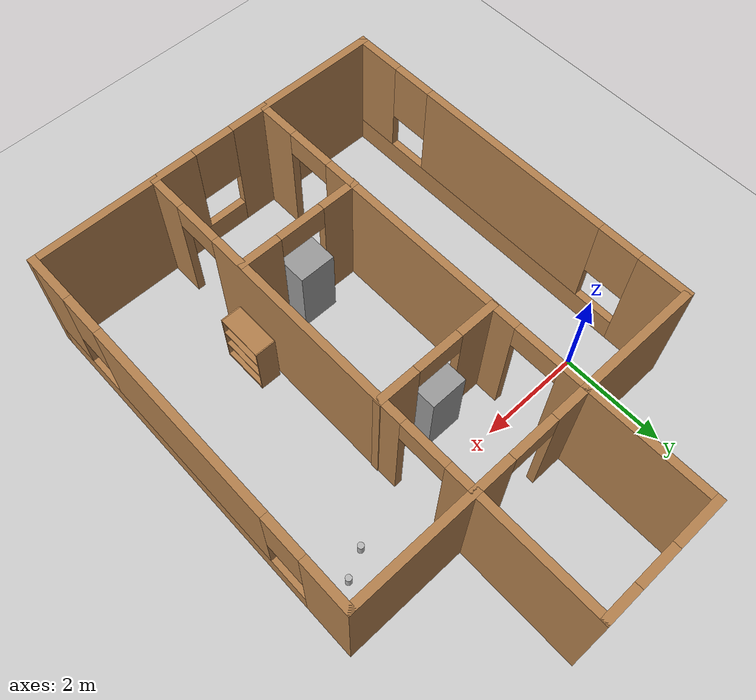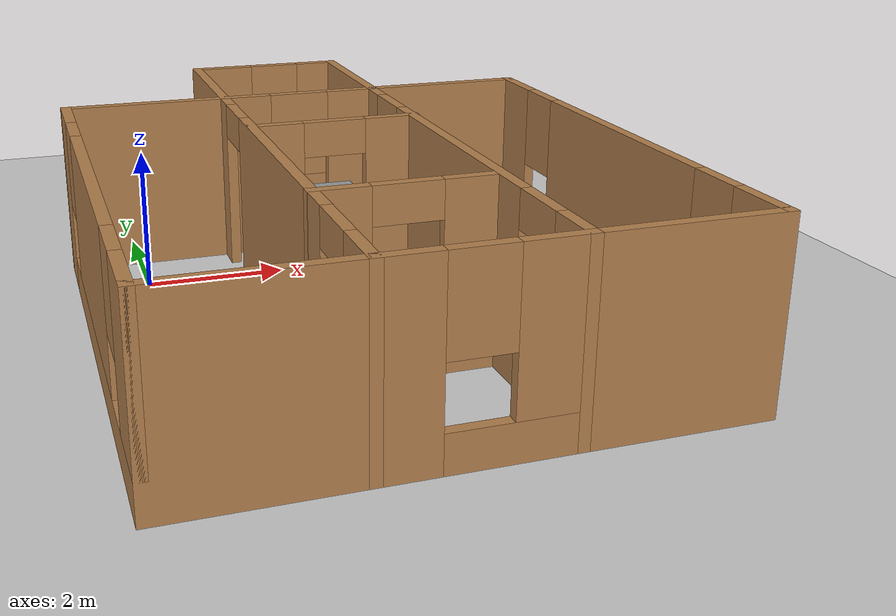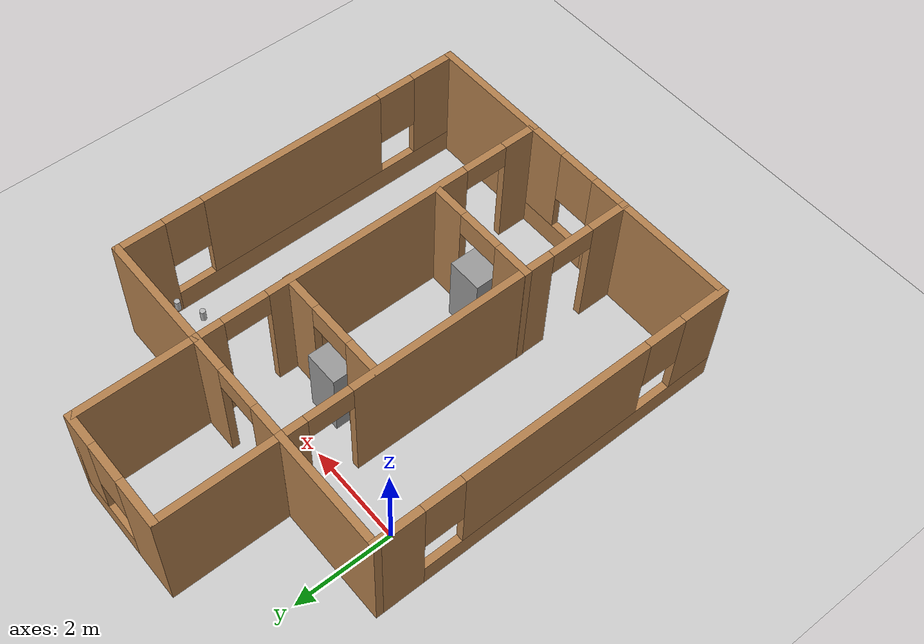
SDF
<sdf version="1.6">
 <world name="default">
  <light name="sun" type="directional">
   <pose>0 0 10 0 -0 0</pose>
   <diffuse>0.8 0.8 0.8 1</diffuse>
   <specular>0.2 0.2 0.2 1</specular>
   <attenuation>
    <range>1000</range>
    <constant>0.9</constant>
    <linear>0.01</linear>
    <quadratic>0.001</quadratic>
   </attenuation>
   <direction>-0.5 0.1 -0.9</direction>
  </light>
  <model name="ground_plane">
   <static>1</static>
   <link name="link">
    <collision name="collision">
     <geometry><plane><normal>0 0 1</normal><size>100 100</size></plane></geometry>
     <surface><friction><ode><mu>100</mu><mu2>50</mu2></ode></friction></surface>
    </collision>
    <visual name="visual">
     <cast_shadows>0</cast_shadows>
     <geometry><plane><normal>0 0 1</normal><size>100 100</size></plane></geometry>
     <material>
      <script><uri>file://media/materials/scripts/gazebo.material</uri><name>Gazebo/Grey</name></script>
     </material>
    </visual>
   </link>
  </model>
  <gravity>0 0 -9.8</gravity>
  <magnetic_field>6e-06 2.3e-05 -4.2e-05</magnetic_field>
  <atmosphere type="adiabatic"/>
  <physics name="default_physics" default="0" type="ode">
   <max_step_size>0.001</max_step_size>
   <real_time_factor>1</real_time_factor>
   <real_time_update_rate>1000</real_time_update_rate>
  </physics>
  <scene><ambient>0.4 0.4 0.4 1</ambient><background>0.7 0.7 0.7 1</background><shadows>1</shadows></scene>
  <spherical_coordinates>
   <surface_model>EARTH_WGS84</surface_model>
   <latitude_deg>0</latitude_deg>
   <longitude_deg>0</longitude_deg>
   <elevation>0</elevation>
   <heading_deg>0</heading_deg>
  </spherical_coordinates>
  <model name="the_whippu_dungeon">
   <pose>2.59607 -1.47689 0 0 -0 0</pose>
   <link name="Wall_63">
    <pose>0 4.85 0 0 -0 0</pose>
    <visual name="Wall_63_Visual_0">
     <pose>-0.754807 0 1.25 0 -0 0</pose>
     <geometry><box><size>0.990386 0.15 2.5</size></box></geometry>
     <material>
      <script><uri>file://media/materials/scripts/gazebo.material</uri><name>Gazebo/Wood</name></script>
      <ambient>1 1 1 1</ambient>
     </material>
     <meta><layer>0</layer></meta>
    </visual>
    <collision name="Wall_63_Collision_0">
     <geometry><box><size>0.990386 0.15 2.5</size></box></geometry>
     <pose>-0.754807 0 1.25 0 -0 0</pose>
    </collision>
    <visual name="Wall_63_Visual_1">
     <pose>0.495193 0 0.25 0 -0 0</pose>
     <geometry><box><size>1.50961 0.15 0.5</size></box></geometry>
     <material>
      <script><uri>file://media/materials/scripts/gazebo.material</uri><name>Gazebo/Wood</name></script>
      <ambient>1 1 1 1</ambient>
     </material>
     <meta><layer>0</layer></meta>
    </visual>
    <collision name="Wall_63_Collision_1">
     <geometry><box><size>1.50961 0.15 0.5</size></box></geometry>
     <pose>0.495193 0 0.25 0 -0 0</pose>
    </collision>
    <visual name="Wall_63_Visual_2">
     <pose>0.895193 0 1.5 0 -0 0</pose>
     <geometry><box><size>0.709614 0.15 2</size></box></geometry>
     <material>
      <script><uri>file://media/materials/scripts/gazebo.material</uri><name>Gazebo/Wood</name></script>
      <ambient>1 1 1 1</ambient>
     </material>
     <meta><layer>0</layer></meta>
    </visual>
    <collision name="Wall_63_Collision_2">
     <geometry><box><size>0.709614 0.15 2</size></box></geometry>
     <pose>0.895193 0 1.5 0 -0 0</pose>
    </collision>
    <visual name="Wall_63_Visual_3">
     <pose>0.140386 0 1.9 0 -0 0</pose>
     <geometry><box><size>0.8 0.15 1.2</size></box></geometry>
     <material>
      <script><uri>file://media/materials/scripts/gazebo.material</uri><name>Gazebo/Wood</name></script>
      <ambient>1 1 1 1</ambient>
     </material>
     <meta><layer>0</layer></meta>
    </visual>
    <collision name="Wall_63_Collision_3">
     <geometry><box><size>0.8 0.15 1.2</size></box></geometry>
     <pose>0.140386 0 1.9 0 -0 0</pose>
    </collision>
   </link>
   <link name="Wall_64">
    <collision name="Wall_64_Collision">
     <geometry><box><size>2.5 0.15 2.5</size></box></geometry>
     <pose>0 0 1.25 0 -0 0</pose>
    </collision>
    <visual name="Wall_64_Visual">
     <pose>0 0 1.25 0 -0 0</pose>
     <geometry><box><size>2.5 0.15 2.5</size></box></geometry>
     <material>
      <script><uri>file://media/materials/scripts/gazebo.material</uri><name>Gazebo/Wood</name></script>
      <ambient>1 1 1 1</ambient>
     </material>
     <meta><layer>0</layer></meta>
    </visual>
    <pose>1.175 3.675 0 0 0 -1.5708</pose>
   </link>
   <link name="Wall_65">
    <pose>0 2.5 0 0 -0 3.14159</pose>
    <visual name="Wall_65_Visual_0">
     <pose>-0.839693 0 1.25 0 -0 0</pose>
     <geometry><box><size>0.820614 0.15 2.5</size></box></geometry>
     <material>
      <script><uri>file://media/materials/scripts/gazebo.material</uri><name>Gazebo/Wood</name></script>
      <ambient>1 1 1 1</ambient>
     </material>
     <meta><layer>0</layer></meta>
    </visual>
    <collision name="Wall_65_Collision_0">
     <geometry><box><size>0.820614 0.15 2.5</size></box></geometry>
     <pose>-0.839693 0 1.25 0 -0 0</pose>
    </collision>
    <visual name="Wall_65_Visual_1">
     <pose>0.860307 0 1.25 0 -0 0</pose>
     <geometry><box><size>0.779386 0.15 2.5</size></box></geometry>
     <material>
      <script><uri>file://media/materials/scripts/gazebo.material</uri><name>Gazebo/Wood</name></script>
      <ambient>1 1 1 1</ambient>
     </material>
     <meta><layer>0</layer></meta>
    </visual>
    <collision name="Wall_65_Collision_1">
     <geometry><box><size>0.779386 0.15 2.5</size></box></geometry>
     <pose>0.860307 0 1.25 0 -0 0</pose>
    </collision>
    <visual name="Wall_65_Visual_2">
     <pose>0.020614 0 2.25 0 -0 0</pose>
     <geometry><box><size>0.9 0.15 0.5</size></box></geometry>
     <material>
      <script><uri>file://media/materials/scripts/gazebo.material</uri><name>Gazebo/Wood</name></script>
      <ambient>1 1 1 1</ambient>
     </material>
     <meta><layer>0</layer></meta>
    </visual>
    <collision name="Wall_65_Collision_2">
     <geometry><box><size>0.9 0.15 0.5</size></box></geometry>
     <pose>0.020614 0 2.25 0 -0 0</pose>
    </collision>
   </link>
   <link name="Wall_66">
    <collision name="Wall_66_Collision">
     <geometry><box><size>2.5 0.15 2.5</size></box></geometry>
     <pose>0 0 1.25 0 -0 0</pose>
    </collision>
    <visual name="Wall_66_Visual">
     <pose>0 0 1.25 0 -0 0</pose>
     <geometry><box><size>2.5 0.15 2.5</size></box></geometry>
     <material>
      <script><uri>file://media/materials/scripts/gazebo.material</uri><name>Gazebo/Wood</name></script>
      <ambient>1 1 1 1</ambient>
     </material>
     <meta><layer>0</layer></meta>
    </visual>
    <pose>-1.175 3.675 0 0 -0 1.5708</pose>
   </link>
   <link name="Wall_69">
    <collision name="Wall_69_Collision">
     <geometry><box><size>2.5 0.15 2.5</size></box></geometry>
     <pose>0 0 1.25 0 -0 0</pose>
    </collision>
    <visual name="Wall_69_Visual">
     <pose>0 0 1.25 0 -0 0</pose>
     <geometry><box><size>2.5 0.15 2.5</size></box></geometry>
     <material>
      <script><uri>file://media/materials/scripts/gazebo.material</uri><name>Gazebo/Wood</name></script>
      <ambient>0.333333 0.666667 1 1</ambient>
     </material>
     <meta><layer>0</layer></meta>
    </visual>
    <pose>-2.35 2.5 0 0 -0 3.14159</pose>
   </link>
   <link name="Wall_70">
    <pose>-3.525 -1.175 0 0 0 -1.5708</pose>
    <visual name="Wall_70_Visual_0">
     <pose>-3.25289 0 1.25 0 -0 0</pose>
     <geometry><box><size>0.994216 0.15 2.5</size></box></geometry>
     <material>
      <script><uri>file://media/materials/scripts/gazebo.material</uri><name>Gazebo/Wood</name></script>
      <ambient>0.333333 0.666667 1 1</ambient>
     </material>
     <meta><layer>0</layer></meta>
    </visual>
    <collision name="Wall_70_Collision_0">
     <geometry><box><size>0.994216 0.15 2.5</size></box></geometry>
     <pose>-3.25289 0 1.25 0 -0 0</pose>
    </collision>
    <visual name="Wall_70_Visual_1">
     <pose>0.497108 0 0.25 0 -0 0</pose>
     <geometry><box><size>6.50578 0.15 0.5</size></box></geometry>
     <material>
      <script><uri>file://media/materials/scripts/gazebo.material</uri><name>Gazebo/Wood</name></script>
      <ambient>0.333333 0.666667 1 1</ambient>
     </material>
     <meta><layer>0</layer></meta>
    </visual>
    <collision name="Wall_70_Collision_1">
     <geometry><box><size>6.50578 0.15 0.5</size></box></geometry>
     <pose>0.497108 0 0.25 0 -0 0</pose>
    </collision>
    <visual name="Wall_70_Visual_2">
     <pose>-0.004034 0 1.5 0 -0 0</pose>
     <geometry><box><size>3.9035 0.15 2</size></box></geometry>
     <material>
      <script><uri>file://media/materials/scripts/gazebo.material</uri><name>Gazebo/Wood</name></script>
      <ambient>0.333333 0.666667 1 1</ambient>
     </material>
     <meta><layer>0</layer></meta>
    </visual>
    <collision name="Wall_70_Collision_2">
     <geometry><box><size>3.9035 0.15 2</size></box></geometry>
     <pose>-0.004034 0 1.5 0 -0 0</pose>
    </collision>
    <visual name="Wall_70_Visual_3">
     <pose>3.24886 0 1.5 0 -0 0</pose>
     <geometry><box><size>1.00228 0.15 2</size></box></geometry>
     <material>
      <script><uri>file://media/materials/scripts/gazebo.material</uri><name>Gazebo/Wood</name></script>
      <ambient>0.333333 0.666667 1 1</ambient>
     </material>
     <meta><layer>0</layer></meta>
    </visual>
    <collision name="Wall_70_Collision_3">
     <geometry><box><size>1.00228 0.15 2</size></box></geometry>
     <pose>3.24886 0 1.5 0 -0 0</pose>
    </collision>
    <visual name="Wall_70_Visual_4">
     <pose>-2.35578 0 1.9 0 -0 0</pose>
     <geometry><box><size>0.8 0.15 1.2</size></box></geometry>
     <material>
      <script><uri>file://media/materials/scripts/gazebo.material</uri><name>Gazebo/Wood</name></script>
      <ambient>0.333333 0.666667 1 1</ambient>
     </material>
     <meta><layer>0</layer></meta>
    </visual>
    <collision name="Wall_70_Collision_4">
     <geometry><box><size>0.8 0.15 1.2</size></box></geometry>
     <pose>-2.35578 0 1.9 0 -0 0</pose>
    </collision>
    <visual name="Wall_70_Visual_5">
     <pose>2.34772 0 1.9 0 -0 0</pose>
     <geometry><box><size>0.8 0.15 1.2</size></box></geometry>
     <material>
      <script><uri>file://media/materials/scripts/gazebo.material</uri><name>Gazebo/Wood</name></script>
      <ambient>0.333333 0.666667 1 1</ambient>
     </material>
     <meta><layer>0</layer></meta>
    </visual>
    <collision name="Wall_70_Collision_5">
     <geometry><box><size>0.8 0.15 1.2</size></box></geometry>
     <pose>2.34772 0 1.9 0 -0 0</pose>
    </collision>
   </link>
   <link name="Wall_71">
    <collision name="Wall_71_Collision">
     <geometry><box><size>2.5 0.15 2.5</size></box></geometry>
     <pose>0 0 1.25 0 -0 0</pose>
    </collision>
    <visual name="Wall_71_Visual">
     <pose>0 0 1.25 0 -0 0</pose>
     <geometry><box><size>2.5 0.15 2.5</size></box></geometry>
     <material>
      <script><uri>file://media/materials/scripts/gazebo.material</uri><name>Gazebo/Wood</name></script>
      <ambient>1 1 1 1</ambient>
     </material>
     <meta><layer>0</layer></meta>
    </visual>
    <pose>-2.35 -4.85 0 0 -0 0</pose>
   </link>
   <link name="Wall_72">
    <pose>-1.175 -1.175 0 0 -0 1.5708</pose>
    <visual name="Wall_72_Visual_0">
     <pose>-3.31411 0 1.25 0 -0 0</pose>
     <geometry><box><size>0.871784 0.15 2.5</size></box></geometry>
     <material>
      <script><uri>file://media/materials/scripts/gazebo.material</uri><name>Gazebo/Wood</name></script>
      <ambient>1 1 1 1</ambient>
     </material>
     <meta><layer>0</layer></meta>
    </visual>
    <collision name="Wall_72_Collision_0">
     <geometry><box><size>0.871784 0.15 2.5</size></box></geometry>
     <pose>-3.31411 0 1.25 0 -0 0</pose>
    </collision>
    <visual name="Wall_72_Visual_1">
     <pose>0.159284 0 1.25 0 -0 0</pose>
     <geometry><box><size>4.275 0.15 2.5</size></box></geometry>
     <material>
      <script><uri>file://media/materials/scripts/gazebo.material</uri><name>Gazebo/Wood</name></script>
      <ambient>1 1 1 1</ambient>
     </material>
     <meta><layer>0</layer></meta>
    </visual>
    <collision name="Wall_72_Collision_1">
     <geometry><box><size>4.275 0.15 2.5</size></box></geometry>
     <pose>0.159284 0 1.25 0 -0 0</pose>
    </collision>
    <visual name="Wall_72_Visual_2">
     <pose>3.47339 0 1.25 0 -0 0</pose>
     <geometry><box><size>0.553216 0.15 2.5</size></box></geometry>
     <material>
      <script><uri>file://media/materials/scripts/gazebo.material</uri><name>Gazebo/Wood</name></script>
      <ambient>1 1 1 1</ambient>
     </material>
     <meta><layer>0</layer></meta>
    </visual>
    <collision name="Wall_72_Collision_2">
     <geometry><box><size>0.553216 0.15 2.5</size></box></geometry>
     <pose>3.47339 0 1.25 0 -0 0</pose>
    </collision>
    <visual name="Wall_72_Visual_3">
     <pose>-2.42822 0 2.25 0 -0 0</pose>
     <geometry><box><size>0.9 0.15 0.5</size></box></geometry>
     <material>
      <script><uri>file://media/materials/scripts/gazebo.material</uri><name>Gazebo/Wood</name></script>
      <ambient>1 1 1 1</ambient>
     </material>
     <meta><layer>0</layer></meta>
    </visual>
    <collision name="Wall_72_Collision_3">
     <geometry><box><size>0.9 0.15 0.5</size></box></geometry>
     <pose>-2.42822 0 2.25 0 -0 0</pose>
    </collision>
    <visual name="Wall_72_Visual_4">
     <pose>2.74678 0 2.25 0 -0 0</pose>
     <geometry><box><size>0.9 0.15 0.5</size></box></geometry>
     <material>
      <script><uri>file://media/materials/scripts/gazebo.material</uri><name>Gazebo/Wood</name></script>
      <ambient>1 1 1 1</ambient>
     </material>
     <meta><layer>0</layer></meta>
    </visual>
    <collision name="Wall_72_Collision_4">
     <geometry><box><size>0.9 0.15 0.5</size></box></geometry>
     <pose>2.74678 0 2.25 0 -0 0</pose>
    </collision>
   </link>
   <link name="Wall_74">
    <collision name="Wall_74_Collision">
     <geometry><box><size>2.5 0.15 2.5</size></box></geometry>
     <pose>0 0 1.25 0 -0 0</pose>
    </collision>
    <visual name="Wall_74_Visual">
     <pose>0 0 1.25 0 -0 0</pose>
     <geometry><box><size>2.5 0.15 2.5</size></box></geometry>
     <material>
      <script><uri>file://media/materials/scripts/gazebo.material</uri><name>Gazebo/Wood</name></script>
      <ambient>1 1 1 1</ambient>
     </material>
     <meta><layer>0</layer></meta>
    </visual>
    <pose>2.35 2.5 0 0 -0 0</pose>
   </link>
   <link name="Wall_75">
    <pose>3.525 -1.175 0 0 0 -1.5708</pose>
    <visual name="Wall_75_Visual_0">
     <pose>-3.25289 0 1.25 0 -0 0</pose>
     <geometry><box><size>0.994216 0.15 2.5</size></box></geometry>
     <material>
      <script><uri>file://media/materials/scripts/gazebo.material</uri><name>Gazebo/Wood</name></script>
      <ambient>1 1 1 1</ambient>
     </material>
     <meta><layer>0</layer></meta>
    </visual>
    <collision name="Wall_75_Collision_0">
     <geometry><box><size>0.994216 0.15 2.5</size></box></geometry>
     <pose>-3.25289 0 1.25 0 -0 0</pose>
    </collision>
    <visual name="Wall_75_Visual_1">
     <pose>0.497108 0 0.25 0 -0 0</pose>
     <geometry><box><size>6.50578 0.15 0.5</size></box></geometry>
     <material>
      <script><uri>file://media/materials/scripts/gazebo.material</uri><name>Gazebo/Wood</name></script>
      <ambient>1 1 1 1</ambient>
     </material>
     <meta><layer>0</layer></meta>
    </visual>
    <collision name="Wall_75_Collision_1">
     <geometry><box><size>6.50578 0.15 0.5</size></box></geometry>
     <pose>0.497108 0 0.25 0 -0 0</pose>
    </collision>
    <visual name="Wall_75_Visual_2">
     <pose>-0.004034 0 1.5 0 -0 0</pose>
     <geometry><box><size>3.9035 0.15 2</size></box></geometry>
     <material>
      <script><uri>file://media/materials/scripts/gazebo.material</uri><name>Gazebo/Wood</name></script>
      <ambient>1 1 1 1</ambient>
     </material>
     <meta><layer>0</layer></meta>
    </visual>
    <collision name="Wall_75_Collision_2">
     <geometry><box><size>3.9035 0.15 2</size></box></geometry>
     <pose>-0.004034 0 1.5 0 -0 0</pose>
    </collision>
    <visual name="Wall_75_Visual_3">
     <pose>3.24886 0 1.5 0 -0 0</pose>
     <geometry><box><size>1.00228 0.15 2</size></box></geometry>
     <material>
      <script><uri>file://media/materials/scripts/gazebo.material</uri><name>Gazebo/Wood</name></script>
      <ambient>1 1 1 1</ambient>
     </material>
     <meta><layer>0</layer></meta>
    </visual>
    <collision name="Wall_75_Collision_3">
     <geometry><box><size>1.00228 0.15 2</size></box></geometry>
     <pose>3.24886 0 1.5 0 -0 0</pose>
    </collision>
    <visual name="Wall_75_Visual_4">
     <pose>-2.35578 0 1.9 0 -0 0</pose>
     <geometry><box><size>0.8 0.15 1.2</size></box></geometry>
     <material>
      <script><uri>file://media/materials/scripts/gazebo.material</uri><name>Gazebo/Wood</name></script>
      <ambient>1 1 1 1</ambient>
     </material>
     <meta><layer>0</layer></meta>
    </visual>
    <collision name="Wall_75_Collision_4">
     <geometry><box><size>0.8 0.15 1.2</size></box></geometry>
     <pose>-2.35578 0 1.9 0 -0 0</pose>
    </collision>
    <visual name="Wall_75_Visual_5">
     <pose>2.34772 0 1.9 0 -0 0</pose>
     <geometry><box><size>0.8 0.15 1.2</size></box></geometry>
     <material>
      <script><uri>file://media/materials/scripts/gazebo.material</uri><name>Gazebo/Wood</name></script>
      <ambient>1 1 1 1</ambient>
     </material>
     <meta><layer>0</layer></meta>
    </visual>
    <collision name="Wall_75_Collision_5">
     <geometry><box><size>0.8 0.15 1.2</size></box></geometry>
     <pose>2.34772 0 1.9 0 -0 0</pose>
    </collision>
   </link>
   <link name="Wall_76">
    <collision name="Wall_76_Collision">
     <geometry><box><size>2.5 0.15 2.5</size></box></geometry>
     <pose>0 0 1.25 0 -0 0</pose>
    </collision>
    <visual name="Wall_76_Visual">
     <pose>0 0 1.25 0 -0 0</pose>
     <geometry><box><size>2.5 0.15 2.5</size></box></geometry>
     <material>
      <script><uri>file://media/materials/scripts/gazebo.material</uri><name>Gazebo/Wood</name></script>
      <ambient>1 1 1 1</ambient>
     </material>
     <meta><layer>0</layer></meta>
    </visual>
    <pose>2.35 -4.85 0 0 -0 3.14159</pose>
   </link>
   <link name="Wall_77">
    <pose>1.175 -1.175 0 0 -0 1.5708</pose>
    <visual name="Wall_77_Visual_0">
     <pose>-3.35436 0 1.25 0 -0 0</pose>
     <geometry><box><size>0.791284 0.15 2.5</size></box></geometry>
     <material>
      <script><uri>file://media/materials/scripts/gazebo.material</uri><name>Gazebo/Wood</name></script>
      <ambient>1 1 1 1</ambient>
     </material>
     <meta><layer>0</layer></meta>
    </visual>
    <collision name="Wall_77_Collision_0">
     <geometry><box><size>0.791284 0.15 2.5</size></box></geometry>
     <pose>-3.35436 0 1.25 0 -0 0</pose>
    </collision>
    <visual name="Wall_77_Visual_1">
     <pose>0.096034 0 1.25 0 -0 0</pose>
     <geometry><box><size>4.3095 0.15 2.5</size></box></geometry>
     <material>
      <script><uri>file://media/materials/scripts/gazebo.material</uri><name>Gazebo/Wood</name></script>
      <ambient>1 1 1 1</ambient>
     </material>
     <meta><layer>0</layer></meta>
    </visual>
    <collision name="Wall_77_Collision_1">
     <geometry><box><size>4.3095 0.15 2.5</size></box></geometry>
     <pose>0.096034 0 1.25 0 -0 0</pose>
    </collision>
    <visual name="Wall_77_Visual_2">
     <pose>3.45039 0 1.25 0 -0 0</pose>
     <geometry><box><size>0.599216 0.15 2.5</size></box></geometry>
     <material>
      <script><uri>file://media/materials/scripts/gazebo.material</uri><name>Gazebo/Wood</name></script>
      <ambient>1 1 1 1</ambient>
     </material>
     <meta><layer>0</layer></meta>
    </visual>
    <collision name="Wall_77_Collision_2">
     <geometry><box><size>0.599216 0.15 2.5</size></box></geometry>
     <pose>3.45039 0 1.25 0 -0 0</pose>
    </collision>
    <visual name="Wall_77_Visual_3">
     <pose>-2.50872 0 2.25 0 -0 0</pose>
     <geometry><box><size>0.9 0.15 0.5</size></box></geometry>
     <material>
      <script><uri>file://media/materials/scripts/gazebo.material</uri><name>Gazebo/Wood</name></script>
      <ambient>1 1 1 1</ambient>
     </material>
     <meta><layer>0</layer></meta>
    </visual>
    <collision name="Wall_77_Collision_3">
     <geometry><box><size>0.9 0.15 0.5</size></box></geometry>
     <pose>-2.50872 0 2.25 0 -0 0</pose>
    </collision>
    <visual name="Wall_77_Visual_4">
     <pose>2.70078 0 2.25 0 -0 0</pose>
     <geometry><box><size>0.9 0.15 0.5</size></box></geometry>
     <material>
      <script><uri>file://media/materials/scripts/gazebo.material</uri><name>Gazebo/Wood</name></script>
      <ambient>1 1 1 1</ambient>
     </material>
     <meta><layer>0</layer></meta>
    </visual>
    <collision name="Wall_77_Collision_4">
     <geometry><box><size>0.9 0.15 0.5</size></box></geometry>
     <pose>2.70078 0 2.25 0 -0 0</pose>
    </collision>
   </link>
   <link name="Wall_79">
    <pose>0 -4.85 0 0 -0 0</pose>
    <visual name="Wall_79_Visual_0">
     <pose>-0.846807 0 1.25 0 -0 0</pose>
     <geometry><box><size>0.806386 0.15 2.5</size></box></geometry>
     <material>
      <script><uri>file://media/materials/scripts/gazebo.material</uri><name>Gazebo/Wood</name></script>
      <ambient>1 1 1 1</ambient>
     </material>
     <meta><layer>0</layer></meta>
    </visual>
    <collision name="Wall_79_Collision_0">
     <geometry><box><size>0.806386 0.15 2.5</size></box></geometry>
     <pose>-0.846807 0 1.25 0 -0 0</pose>
    </collision>
    <visual name="Wall_79_Visual_1">
     <pose>0.403193 0 0.25 0 -0 0</pose>
     <geometry><box><size>1.69361 0.15 0.5</size></box></geometry>
     <material>
      <script><uri>file://media/materials/scripts/gazebo.material</uri><name>Gazebo/Wood</name></script>
      <ambient>1 1 1 1</ambient>
     </material>
     <meta><layer>0</layer></meta>
    </visual>
    <collision name="Wall_79_Collision_1">
     <geometry><box><size>1.69361 0.15 0.5</size></box></geometry>
     <pose>0.403193 0 0.25 0 -0 0</pose>
    </collision>
    <visual name="Wall_79_Visual_2">
     <pose>0.803193 0 1.5 0 -0 0</pose>
     <geometry><box><size>0.893614 0.15 2</size></box></geometry>
     <material>
      <script><uri>file://media/materials/scripts/gazebo.material</uri><name>Gazebo/Wood</name></script>
      <ambient>1 1 1 1</ambient>
     </material>
     <meta><layer>0</layer></meta>
    </visual>
    <collision name="Wall_79_Collision_2">
     <geometry><box><size>0.893614 0.15 2</size></box></geometry>
     <pose>0.803193 0 1.5 0 -0 0</pose>
    </collision>
    <visual name="Wall_79_Visual_3">
     <pose>-0.043614 0 1.9 0 -0 0</pose>
     <geometry><box><size>0.8 0.15 1.2</size></box></geometry>
     <material>
      <script><uri>file://media/materials/scripts/gazebo.material</uri><name>Gazebo/Wood</name></script>
      <ambient>1 1 1 1</ambient>
     </material>
     <meta><layer>0</layer></meta>
    </visual>
    <collision name="Wall_79_Collision_3">
     <geometry><box><size>0.8 0.15 1.2</size></box></geometry>
     <pose>-0.043614 0 1.9 0 -0 0</pose>
    </collision>
   </link>
   <link name="Wall_83">
    <pose>0.015886 0.605784 0 0 -0 0</pose>
    <visual name="Wall_83_Visual_0">
     <pose>-0.85675 0 1.25 0 -0 0</pose>
     <geometry><box><size>0.7865 0.15 2.5</size></box></geometry>
     <material>
      <script><uri>file://media/materials/scripts/gazebo.material</uri><name>Gazebo/Wood</name></script>
      <ambient>1 1 1 1</ambient>
     </material>
     <meta><layer>0</layer></meta>
    </visual>
    <collision name="Wall_83_Collision_0">
     <geometry><box><size>0.7865 0.15 2.5</size></box></geometry>
     <pose>-0.85675 0 1.25 0 -0 0</pose>
    </collision>
    <visual name="Wall_83_Visual_1">
     <pose>0.84325 0 1.25 0 -0 0</pose>
     <geometry><box><size>0.8135 0.15 2.5</size></box></geometry>
     <material>
      <script><uri>file://media/materials/scripts/gazebo.material</uri><name>Gazebo/Wood</name></script>
      <ambient>1 1 1 1</ambient>
     </material>
     <meta><layer>0</layer></meta>
    </visual>
    <collision name="Wall_83_Collision_1">
     <geometry><box><size>0.8135 0.15 2.5</size></box></geometry>
     <pose>0.84325 0 1.25 0 -0 0</pose>
    </collision>
    <visual name="Wall_83_Visual_2">
     <pose>-0.0135 0 2.25 0 -0 0</pose>
     <geometry><box><size>0.9 0.15 0.5</size></box></geometry>
     <material>
      <script><uri>file://media/materials/scripts/gazebo.material</uri><name>Gazebo/Wood</name></script>
      <ambient>1 1 1 1</ambient>
     </material>
     <meta><layer>0</layer></meta>
    </visual>
    <collision name="Wall_83_Collision_2">
     <geometry><box><size>0.9 0.15 0.5</size></box></geometry>
     <pose>-0.0135 0 2.25 0 -0 0</pose>
    </collision>
   </link>
   <link name="Wall_85">
    <pose>-0.007114 -2.56821 0 0 -0 0</pose>
    <visual name="Wall_85_Visual_0">
     <pose>-0.8625 0 1.25 0 -0 0</pose>
     <geometry><box><size>0.775 0.15 2.5</size></box></geometry>
     <material>
      <script><uri>file://media/materials/scripts/gazebo.material</uri><name>Gazebo/Wood</name></script>
      <ambient>1 1 1 1</ambient>
     </material>
     <meta><layer>0</layer></meta>
    </visual>
    <collision name="Wall_85_Collision_0">
     <geometry><box><size>0.775 0.15 2.5</size></box></geometry>
     <pose>-0.8625 0 1.25 0 -0 0</pose>
    </collision>
    <visual name="Wall_85_Visual_1">
     <pose>0.8375 0 1.25 0 -0 0</pose>
     <geometry><box><size>0.825 0.15 2.5</size></box></geometry>
     <material>
      <script><uri>file://media/materials/scripts/gazebo.material</uri><name>Gazebo/Wood</name></script>
      <ambient>1 1 1 1</ambient>
     </material>
     <meta><layer>0</layer></meta>
    </visual>
    <collision name="Wall_85_Collision_1">
     <geometry><box><size>0.825 0.15 2.5</size></box></geometry>
     <pose>0.8375 0 1.25 0 -0 0</pose>
    </collision>
    <visual name="Wall_85_Visual_2">
     <pose>-0.025 0 2.25 0 -0 0</pose>
     <geometry><box><size>0.9 0.15 0.5</size></box></geometry>
     <material>
      <script><uri>file://media/materials/scripts/gazebo.material</uri><name>Gazebo/Wood</name></script>
      <ambient>1 1 1 1</ambient>
     </material>
     <meta><layer>0</layer></meta>
    </visual>
    <collision name="Wall_85_Collision_2">
     <geometry><box><size>0.9 0.15 0.5</size></box></geometry>
     <pose>-0.025 0 2.25 0 -0 0</pose>
    </collision>
   </link>
   <static>1</static>
  </model>
  <model name="bookshelf">
   <static>1</static>
   <link name="link">
    <inertial><mass>1</mass></inertial>
    <collision name="back">
     <pose>0 0.005 0.6 0 -0 0</pose>
     <geometry><box><size>0.9 0.01 1.2</size></box></geometry>
    </collision>
    <visual name="visual1">
     <pose>0 0.005 0.6 0 -0 0</pose>
     <geometry><box><size>0.9 0.01 1.2</size></box></geometry>
     <material>
      <script><uri>file://media/materials/scripts/gazebo.material</uri><name>Gazebo/Wood</name></script>
     </material>
    </visual>
    <collision name="left_side">
     <pose>0.45 -0.195 0.6 0 -0 0</pose>
     <geometry><box><size>0.02 0.4 1.2</size></box></geometry>
    </collision>
    <visual name="visual2">
     <pose>0.45 -0.195 0.6 0 -0 0</pose>
     <geometry><box><size>0.02 0.4 1.2</size></box></geometry>
     <material>
      <script><uri>file://media/materials/scripts/gazebo.material</uri><name>Gazebo/Wood</name></script>
     </material>
    </visual>
    <collision name="right_side">
     <pose>-0.45 -0.195 0.6 0 -0 0</pose>
     <geometry><box><size>0.02 0.4 1.2</size></box></geometry>
    </collision>
    <visual name="visual3">
     <pose>-0.45 -0.195 0.6 0 -0 0</pose>
     <geometry><box><size>0.02 0.4 1.2</size></box></geometry>
     <material>
      <script><uri>file://media/materials/scripts/gazebo.material</uri><name>Gazebo/Wood</name></script>
     </material>
    </visual>
    <collision name="bottom">
     <pose>0 -0.195 0.03 0 -0 0</pose>
     <geometry><box><size>0.88 0.4 0.06</size></box></geometry>
    </collision>
    <visual name="visual4">
     <pose>0 -0.195 0.03 0 -0 0</pose>
     <geometry><box><size>0.88 0.4 0.06</size></box></geometry>
     <material>
      <script><uri>file://media/materials/scripts/gazebo.material</uri><name>Gazebo/Wood</name></script>
     </material>
    </visual>
    <collision name="top">
     <pose>0 -0.195 1.19 0 -0 0</pose>
     <geometry><box><size>0.88 0.4 0.02</size></box></geometry>
    </collision>
    <visual name="visual5">
     <pose>0 -0.195 1.19 0 -0 0</pose>
     <geometry><box><size>0.88 0.4 0.02</size></box></geometry>
     <material>
      <script><uri>file://media/materials/scripts/gazebo.material</uri><name>Gazebo/Wood</name></script>
     </material>
    </visual>
    <collision name="low_shelf">
     <pose>0 -0.195 0.43 0 -0 0</pose>
     <geometry><box><size>0.88 0.4 0.02</size></box></geometry>
    </collision>
    <visual name="visual6">
     <pose>0 -0.195 0.43 0 -0 0</pose>
     <geometry><box><size>0.88 0.4 0.02</size></box></geometry>
     <material>
      <script><uri>file://media/materials/scripts/gazebo.material</uri><name>Gazebo/Wood</name></script>
     </material>
    </visual>
    <collision name="high_shelf">
     <pose>0 -0.195 0.8 0 -0 0</pose>
     <geometry><box><size>0.88 0.4 0.02</size></box></geometry>
    </collision>
    <visual name="visual7">
     <pose>0 -0.195 0.8 0 -0 0</pose>
     <geometry><box><size>0.88 0.4 0.02</size></box></geometry>
     <material>
      <script><uri>file://media/materials/scripts/gazebo.material</uri><name>Gazebo/Wood</name></script>
     </material>
    </visual>
   </link>
   <pose>3.89096 -3.71426 0 0 -0 1.56822</pose>
  </model>
  <model name="beer">
   <link name="link">
    <pose>0 0 0.115 0 -0 0</pose>
    <inertial>
     <mass>0.39</mass>
     <inertia><ixx>0.00058</ixx><ixy>0</ixy><ixz>0</ixz><iyy>0.00058</iyy><iyz>0</iyz><izz>0.00019</izz></inertia>
    </inertial>
    <collision name="collision">
     <geometry><cylinder><radius>0.055</radius><length>0.23</length></cylinder></geometry>
    </collision>
    <visual name="visual">
     <geometry><cylinder><radius>0.055</radius><length>0.23</length></cylinder></geometry>
     <material>
      <script>
       <uri>model://beer/materials/scripts</uri>
       <uri>model://beer/materials/textures</uri>
       <name>Beer/Diffuse</name>
      </script>
     </material>
    </visual>
   </link>
   <pose>5.13125 0.170445 0.774992 -1e-06 2.7e-05 0.000782</pose>
  </model>
  <model name="beer_clone">
   <link name="link">
    <pose>0 0 0.115 0 -0 0</pose>
    <inertial>
     <mass>0.39</mass>
     <inertia><ixx>0.00058</ixx><ixy>0</ixy><ixz>0</ixz><iyy>0.00058</iyy><iyz>0</iyz><izz>0.00019</izz></inertia>
    </inertial>
    <collision name="collision">
     <geometry><cylinder><radius>0.055</radius><length>0.23</length></cylinder></geometry>
    </collision>
    <visual name="visual">
     <geometry><cylinder><radius>0.055</radius><length>0.23</length></cylinder></geometry>
     <material>
      <script>
       <uri>model://beer/materials/scripts</uri>
       <uri>model://beer/materials/textures</uri>
       <name>Beer/Diffuse</name>
      </script>
     </material>
    </visual>
   </link>
   <pose>5.59032 0.404728 0.775001 1.1e-05 -2.5e-05 0.003593</pose>
  </model>
  <model name="door_stopper">
   <link name="link">
    <pose>0.034665 0.915381 0 0 -0 0</pose>
    <inertial>
     <mass>0.707073</mass>
     <inertia>
      <ixx>0.15685</ixx>
      <ixy>0</ixy>
      <ixz>0</ixz>
      <iyy>0.160966</iyy>
      <iyz>0</iyz>
      <izz>0.0560546</izz>
     </inertia>
    </inertial>
    <visual name="visual">
     <geometry><box><size>0.714557 0.663877 1.49038</size></box></geometry>
     <material>
      <script><name>Gazebo/Grey</name><uri>file://media/materials/scripts/gazebo.material</uri></script>
      <shader type="pixel"><normal_map>__default__</normal_map></shader>
      <ambient>0.3 0.3 0.3 1</ambient>
      <diffuse>0.7 0.7 0.7 1</diffuse>
      <specular>0.01 0.01 0.01 1</specular>
      <emissive>0 0 0 1</emissive>
     </material>
    </visual>
    <collision name="collision">
     <geometry><box><size>0.714557 0.663877 1.49038</size></box></geometry>
     <surface>
      <friction>
       <ode><mu>1</mu><mu2>1</mu2><fdir1>0 0 0</fdir1><slip1>0</slip1><slip2>0</slip2></ode>
       <torsional>
        <coefficient>1</coefficient>
        <patch_radius>0</patch_radius>
        <surface_radius>0</surface_radius>
        <use_patch_radius>1</use_patch_radius>
        <ode><slip>0</slip></ode>
       </torsional>
      </friction>
      <bounce><restitution_coefficient>0</restitution_coefficient><threshold>1e+06</threshold></bounce>
      <contact>
       <collide_without_contact>0</collide_without_contact>
       <collide_without_contact_bitmask>1</collide_without_contact_bitmask>
       <collide_bitmask>1</collide_bitmask>
       <ode>
        <soft_cfm>0</soft_cfm>
        <soft_erp>0.2</soft_erp>
        <kp>1e+13</kp>
        <kd>1</kd>
        <max_vel>0.01</max_vel>
        <min_depth>0</min_depth>
       </ode>
       <bullet>
        <split_impulse>1</split_impulse>
        <split_impulse_penetration_threshold>-0.01</split_impulse_penetration_threshold>
        <soft_cfm>0</soft_cfm>
        <soft_erp>0.2</soft_erp>
        <kp>1e+13</kp>
        <kd>1</kd>
       </bullet>
      </contact>
     </surface>
    </collision>
   </link>
   <static>0</static>
   <pose>2.53055 -1.79687 0.74519 -0 -2e-06 -9.1e-05</pose>
  </model>
  <model name="door_stopper_0">
   <link name="link">
    <pose>0.034665 0.915381 0 0 -0 0</pose>
    <inertial>
     <mass>0.707073</mass>
     <inertia>
      <ixx>0.15685</ixx>
      <ixy>0</ixy>
      <ixz>0</ixz>
      <iyy>0.160966</iyy>
      <iyz>0</iyz>
      <izz>0.0560546</izz>
     </inertia>
    </inertial>
    <visual name="visual">
     <geometry><box><size>0.714557 0.663877 1.49038</size></box></geometry>
     <material>
      <script><name>Gazebo/Grey</name><uri>file://media/materials/scripts/gazebo.material</uri></script>
      <shader type="pixel"><normal_map>__default__</normal_map></shader>
      <ambient>0.3 0.3 0.3 1</ambient>
      <diffuse>0.7 0.7 0.7 1</diffuse>
      <specular>0.01 0.01 0.01 1</specular>
      <emissive>0 0 0 1</emissive>
     </material>
    </visual>
    <collision name="collision">
     <geometry><box><size>0.714557 0.663877 1.49038</size></box></geometry>
     <surface>
      <friction>
       <ode><mu>1</mu><mu2>1</mu2><fdir1>0 0 0</fdir1><slip1>0</slip1><slip2>0</slip2></ode>
       <torsional>
        <coefficient>1</coefficient>
        <patch_radius>0</patch_radius>
        <surface_radius>0</surface_radius>
        <use_patch_radius>1</use_patch_radius>
        <ode><slip>0</slip></ode>
       </torsional>
      </friction>
      <bounce><restitution_coefficient>0</restitution_coefficient><threshold>1e+06</threshold></bounce>
      <contact>
       <collide_without_contact>0</collide_without_contact>
       <collide_without_contact_bitmask>1</collide_without_contact_bitmask>
       <collide_bitmask>1</collide_bitmask>
       <ode>
        <soft_cfm>0</soft_cfm>
        <soft_erp>0.2</soft_erp>
        <kp>1e+13</kp>
        <kd>1</kd>
        <max_vel>0.01</max_vel>
        <min_depth>0</min_depth>
       </ode>
       <bullet>
        <split_impulse>1</split_impulse>
        <split_impulse_penetration_threshold>-0.01</split_impulse_penetration_threshold>
        <soft_cfm>0</soft_cfm>
        <soft_erp>0.2</soft_erp>
        <kp>1e+13</kp>
        <kd>1</kd>
       </bullet>
      </contact>
     </surface>
    </collision>
   </link>
   <static>0</static>
   <pose>2.50782 -4.93904 0.74519 -2e-06 4e-06 -0.000101</pose>
  </model>
 </world>
</sdf>
